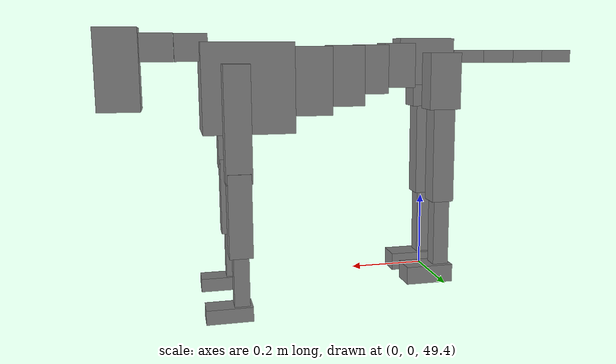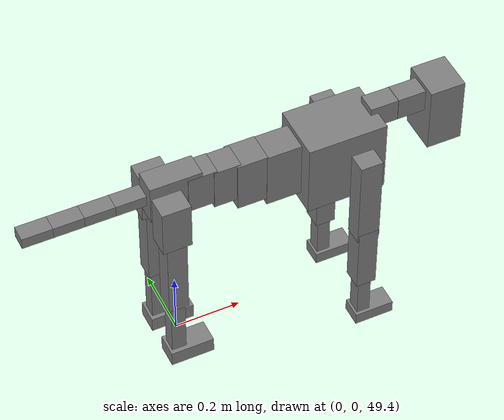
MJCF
<mujoco model="dog">

    <default>
        <joint armature="0.02" stiffness="1" damping="0.2" limited="true"/>
        <geom condim="3" friction="1 0.05 0.05" margin="0.01"/>
        <motor ctrllimited="true" ctrlrange="-1.0 1.0" forcelimited="true" gear="50"/>
    </default>

    <compiler inertiafromgeom="true" angle="radian"/>

    <option timestep="0.016" iterations="50" tolerance="1e-10" solver="Newton" jacobian="dense" cone="pyramidal"/>

    <size nconmax="20000" njmax="60000" nstack="5000000"/>
    <visual>
        <map force="0.1" zfar="30"/>
        <rgba haze="0.15 0.25 0.35 1"/>
        <quality shadowsize="2048"/>
        <global offwidth="800" offheight="800"/>
    </visual>

    <asset>
        <texture type="skybox" builtin="gradient" rgb1="0.3 0.5 0.7" rgb2="0 0 0" width="512" height="512"/>
        <texture name="texplane" type="2d" builtin="checker" rgb1=".2 .3 .4" rgb2=".1 0.15 0.2" width="512" height="512"
                 mark="cross" markrgb=".8 .8 .8"/>
        <texture name="texgeom" type="cube" builtin="flat" mark="cross" width="127" height="1278" rgb1="0.8 0.6 0.4"
                 rgb2="0.8 0.6 0.4" markrgb="1 1 1" random="0.01"/>

        <material name="matplane" reflectance="0.3" texture="texplane" texrepeat="1 1" texuniform="true"/>
        <material name="matgeom" texture="texgeom" texuniform="true" rgba="0.8 0.6 .4 1"/>
    </asset>

    <worldbody>
        <geom name="floor" pos="0 0 0" size="0 0 .25" type="plane" material="matplane" condim="3"/>

        <light directional="false" diffuse=".2 .2 .2" specular="0 0 0" pos="0 0 5" dir="0 0 -1" castshadow="false"/>
        <light mode="targetbodycom" target="torso" directional="false" diffuse=".8 .8 .8" specular="0.3 0.3 0.3"
               pos="0 0 4.0" dir="0 0 -1"/>

        <body name="root" pos="0 0 50">
            <freejoint name="root_1"/>
            <geom type="box" pos="0 0 -0.02" size="0.0774  0.0358  0.063" density="2030"/>

            <body name="spine1" pos="0.054 0 0">
                <joint name="spine1_y" axis="0 1 0" range="0 0.7" limited="true"/>
                <geom type="box" pos="0.02375 0 -0.03" size="0.04375  0.0375  0.05985" density="2030"/>

                <body name="spine2" pos="0.0612 0 0">
                    <joint name="spine2_y" axis="0 1 0" range="-0.15 0.15" limited="true"/>
                    <geom type="box" pos="0.03555  0  -0.04" size="0.04055  0.039  0.06615" density="2030"/>

                    <body name="spine3" pos="0.0730 0 0">
                        <joint name="spine3_y" axis="0 1 0" range="-0.15 0.15" limited="true"/>
                        <geom type="box" pos="0.03555  0  -0.057" size="0.04555  0.0445  0.081" density="2030"/>

                        <body name="spine4" pos="0.0780 0 0">
                            <joint name="spine4_y" axis="0 1 0" range="-0.15 0.15" limited="true"/>
                            <geom type="box" pos="0.05265  0  -0.07" size="0.05265  0.045  0.09135" density="2030"/>

                            <body name="torso" pos="0.1082 0 0">
                                <joint name="torso_y" axis="0 1 0" range="-0.15 0.15" limited="true"/>
                                <geom type="box" pos="0.11925  0  -0.085" size="0.11925  0.085  0.11745"
                                      density="2030"/>

                                <body name="neck1" pos="0.2160  0   0.0180">
                                    <joint name="neck1_y" axis="0 1 0" range="-1.2  -1" limited="true"/>
                                    <geom type="box" pos="0.0423  0  0" size="0.0423  0.03  0.036" density="2325"/>

                                    <body name="neck2" pos="0.0853  0  0">
                                        <joint name="neck2_y" axis="0 1 0" range="0.1  0" limited="true"/>
                                        <geom type="box" pos="0.0423  0  0" size="0.0423  0.03  0.036" density="2325"/>

                                        <body name="head" pos="0.0853  0  0">
                                            <joint name="head_y" axis="0 1 0" range="-0.3  -0.2" limited="true"/>
                                            <geom type="box" pos="0.0531  0  -0.055" size="0.0531  0.06  0.1044"
                                                  density="4030"/>

                                        </body>
                                    </body>
                                </body>

                                <body name="front_shoulder" pos="0.156  0   -0.0480">
                                    <joint name="front_shoulder_y" axis="0 1 0" range="-1 1.5" limited="true"/>
                                    <geom type="box" pos="0 0.13 -0.1221" size="0.0336  0.0288  0.1487" density="1158"/>
                                    <geom type="box" pos="0 -0.13 -0.1221" size="0.0336  0.0288  0.1487"
                                          density="1158"/>

                                    <body name="front_elbow" pos="0  0  -0.2441">
                                        <joint name="front_elbow_y" axis="0 1 0" range="-2 0" limited="true"/>
                                        <geom type="box" pos="0 0.13 -0.1078" size="0.0302  0.0309  0.1078"
                                              density="1081"/>
                                        <geom type="box" pos="0 -0.13 -0.1078" size="0.0302  0.0309  0.1078"
                                              density="1081"/>

                                        <body name="front_wrist" pos="0  0  -0.2156">
                                            <joint name="front_wrist_y" axis="0 1 0" range="-0.2 0" limited="true"/>
                                            <geom type="box" pos="0 0.13 -0.0719" size="0.0200  0.0222  0.0850"
                                                  density="1664"/>
                                            <geom type="box" pos="0 -0.13 -0.0719" size="0.0200  0.0222  0.0850"
                                                  density="1664"/>

                                            <body name="front_finger_end" pos="0  0  -0.1438">
                                                <joint name="front_finger_y" axis="0 1 0" range="-0.4 1"
                                                       limited="true"/>
                                                <geom type="box" pos="0.0326  0.13  -0.0040"
                                                      size="0.0598  0.0326  0.0190" density="1515"/>
                                                <geom type="box" pos="0.0326  -0.13  -0.0040"
                                                      size="0.0598  0.0326  0.0190" density="1515"/>

                                            </body>

                                        </body>
                                    </body>
                                </body>

                            </body>
                        </body>
                    </body>
                </body>
            </body>

            <body name="back_hip" pos="-0.03 0 -0.018">
                <joint name="back_hip_y" axis="0 1 0" range="-1.5 0.3" limited="true"/>
                <geom type="box" pos="0 0.07 -0.0530" size="0.0434  0.0340  0.0758" density="1154"/>
                <geom type="box" pos="0 -0.07 -0.0530" size="0.0434  0.0340  0.0758" density="1154"/>

                <body name="back_knee" pos="0  0  -0.1060">
                    <joint name="back_knee_y" axis="0 1 0" range="0 2.8" limited="true"/>
                    <geom type="box" pos="0 0.07 -0.1310" size="0.0301  0.0297  0.1466" density="1227"/>
                    <geom type="box" pos="0 -0.07 -0.1310" size="0.0301  0.0297  0.1466" density="1227"/>

                    <body name="back_ankle" pos="0  0  -0.2621">
                        <joint name="back_ankle_y" axis="0 1 0" range="-2.2 0" limited="true"/>
                        <geom type="box" pos="0 0.07 -0.1049" size="0.0220  0.0220  0.1162" density="1284"/>
                        <geom type="box" pos="0 -0.07 -0.1049" size="0.0220  0.0220  0.1162" density="1284"/>

                        <body name="back_toe_end" pos="0  0  -0.2099">
                            <joint name="back_toe_y" axis="0 1 0" range="-0.4 1" limited="true"/>
                            <geom type="box" pos="0.0359  0.07  -0.0093" size="0.0658  0.0359  0.0243" density="1515"/>
                            <geom type="box" pos="0.0359  -0.07  -0.0093" size="0.0658  0.0359  0.0243" density="1515"/>

                        </body>
                    </body>
                </body>
            </body>

            <body name="tail1" pos="-0.074 0 -0.006">
                <joint name="tail1_y" axis="0 1 0" range="-0.2 0.2" limited="true"/>
                <geom type="box" pos="-0.0536  0  0" size="0.045  0.025  0.0175" density="1587"/>

                <body name="tail2" pos="-0.09 0 0">
                    <joint name="tail2_y" axis="0 1 0" range="-0.2 0.2" limited="true"/>
                    <geom type="box" pos="-0.0536  0  0" size="0.045  0.025  0.0175" density="1587"/>

                    <body name="tail3" pos="-0.09 0 0">
                        <joint name="tail3_y" axis="0 1 0" range="-0.2 0.2" limited="true"/>
                        <geom type="box" pos="-0.0536  0  0" size="0.045  0.025  0.0175" density="1587"/>

                        <body name="tail4" pos="-0.09 0 0">
                            <joint name="tail4_y" axis="0 1 0" range="-0.2 0.2" limited="true"/>
                            <geom type="box" pos="-0.0536  0  0" size="0.045  0.025  0.0175" density="1587"/>

                        </body>
                    </body>
                </body>
            </body>
        </body>
    </worldbody>

    <actuator>
        <motor joint="spine1_y" forcerange="-150 150     "/>
        <motor joint="spine2_y" forcerange="-150 150     "/>
        <motor joint="spine3_y" forcerange="-150 150     "/>
        <motor joint="spine4_y" forcerange="-150 150     "/>
        <motor joint="torso_y" forcerange="-150 150     "/>
        <motor joint="neck1_y" forcerange="-100 100       "/>
        <motor joint="neck2_y" forcerange="-100 100       "/>
        <motor joint="head_y" forcerange="-150 150       "/>
        <motor joint="front_shoulder_y" forcerange="-141.97 149.76"/>
        <motor joint="front_elbow_y" forcerange="-138.50 185.95"/>
        <motor joint="front_wrist_y" forcerange="-51.18 126.74"/>
        <motor joint="front_finger_y" forcerange="-93.47 40.60"/>
        <motor joint="back_hip_y" forcerange="-279.08 374.78"/>
        <motor joint="back_knee_y" forcerange="-317.55 314.01"/>
        <motor joint="back_angle_y" forcerange="-78.01 174.20"/>
        <motor joint="back_toe_y" forcerange="-107.32 99.93"/>
        <motor joint="tail1_y" forcerange="-50 50     "/>
        <motor joint="tail2_y" forcerange="-50 50     "/>
        <motor joint="tail3_y" forcerange="-50 50     "/>
        <motor joint="tail4_y" forcerange="-50 50     "/>
    </actuator>
</mujoco>
